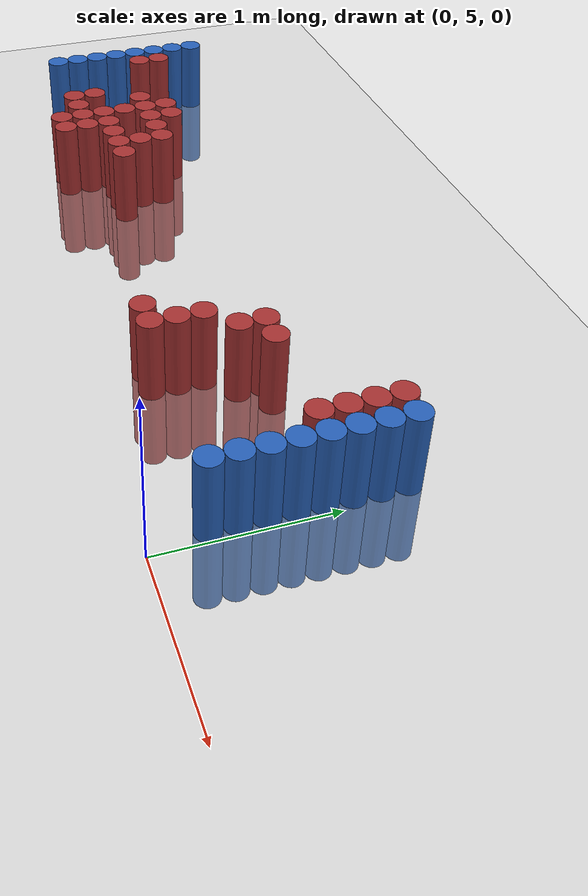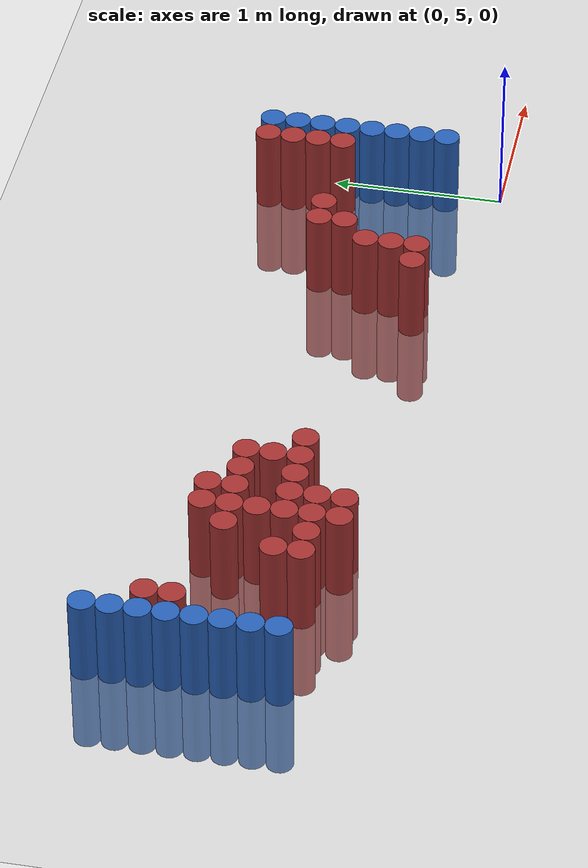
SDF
<sdf version="1.6">
 <world name="default">
  <model name="ground_plane">
   <static>1</static>
   <link name="link">
    <collision name="collision">
     <geometry><plane><normal>0 0 1</normal><size>100 100</size></plane></geometry>
     <surface><friction><ode><mu>100</mu><mu2>50</mu2></ode></friction></surface>
    </collision>
    <visual name="visual">
     <cast_shadows>0</cast_shadows>
     <geometry><plane><normal>0 0 1</normal><size>100 100</size></plane></geometry>
     <material>
      <script><uri>file://media/materials/scripts/gazebo.material</uri><name>Gazebo/Grey</name></script>
     </material>
    </visual>
   </link>
  </model>
  <model name="unit_cylinder_98">
   <static>1</static>
   <pose>-4.425000 5.475000 0.000000 0.000000 0.000000 0.000000</pose>
   <link name="link">
    <inertial>
     <mass>1</mass>
     <inertia><ixx>0.145833</ixx><ixy>0</ixy><ixz>0</ixz><iyy>0.145833</iyy><iyz>0</iyz><izz>0.125</izz></inertia>
    </inertial>
    <collision name="collision">
     <geometry><cylinder><radius>0.075000</radius><length>1</length></cylinder></geometry>
    </collision>
    <visual name="visual">
     <geometry><cylinder><radius>0.075000</radius><length>1</length></cylinder></geometry>
     <material>
      <ambient>0.152000 0.379000 0.720000 1</ambient>
      <diffuse>0.152000 0.379000 0.720000 1</diffuse>
     </material>
     <material>
      <script><name>Gazebo/Grey</name><uri>file://media/materials/scripts/gazebo.material</uri></script>
     </material>
    </visual>
   </link>
  </model>
  <model name="unit_cylinder_99">
   <static>1</static>
   <pose>-4.425000 5.625000 0.000000 0.000000 0.000000 0.000000</pose>
   <link name="link">
    <inertial>
     <mass>1</mass>
     <inertia><ixx>0.145833</ixx><ixy>0</ixy><ixz>0</ixz><iyy>0.145833</iyy><iyz>0</iyz><izz>0.125</izz></inertia>
    </inertial>
    <collision name="collision">
     <geometry><cylinder><radius>0.075000</radius><length>1</length></cylinder></geometry>
    </collision>
    <visual name="visual">
     <geometry><cylinder><radius>0.075000</radius><length>1</length></cylinder></geometry>
     <material>
      <ambient>0.152000 0.379000 0.720000 1</ambient>
      <diffuse>0.152000 0.379000 0.720000 1</diffuse>
     </material>
     <material>
      <script><name>Gazebo/Grey</name><uri>file://media/materials/scripts/gazebo.material</uri></script>
     </material>
    </visual>
   </link>
  </model>
  <model name="unit_cylinder_100">
   <static>1</static>
   <pose>-4.425000 5.775000 0.000000 0.000000 0.000000 0.000000</pose>
   <link name="link">
    <inertial>
     <mass>1</mass>
     <inertia><ixx>0.145833</ixx><ixy>0</ixy><ixz>0</ixz><iyy>0.145833</iyy><iyz>0</iyz><izz>0.125</izz></inertia>
    </inertial>
    <collision name="collision">
     <geometry><cylinder><radius>0.075000</radius><length>1</length></cylinder></geometry>
    </collision>
    <visual name="visual">
     <geometry><cylinder><radius>0.075000</radius><length>1</length></cylinder></geometry>
     <material>
      <ambient>0.152000 0.379000 0.720000 1</ambient>
      <diffuse>0.152000 0.379000 0.720000 1</diffuse>
     </material>
     <material>
      <script><name>Gazebo/Grey</name><uri>file://media/materials/scripts/gazebo.material</uri></script>
     </material>
    </visual>
   </link>
  </model>
  <model name="unit_cylinder_101">
   <static>1</static>
   <pose>-4.425000 5.925000 0.000000 0.000000 0.000000 0.000000</pose>
   <link name="link">
    <inertial>
     <mass>1</mass>
     <inertia><ixx>0.145833</ixx><ixy>0</ixy><ixz>0</ixz><iyy>0.145833</iyy><iyz>0</iyz><izz>0.125</izz></inertia>
    </inertial>
    <collision name="collision">
     <geometry><cylinder><radius>0.075000</radius><length>1</length></cylinder></geometry>
    </collision>
    <visual name="visual">
     <geometry><cylinder><radius>0.075000</radius><length>1</length></cylinder></geometry>
     <material>
      <ambient>0.152000 0.379000 0.720000 1</ambient>
      <diffuse>0.152000 0.379000 0.720000 1</diffuse>
     </material>
     <material>
      <script><name>Gazebo/Grey</name><uri>file://media/materials/scripts/gazebo.material</uri></script>
     </material>
    </visual>
   </link>
  </model>
  <model name="unit_cylinder_102">
   <static>1</static>
   <pose>-4.425000 6.075000 0.000000 0.000000 0.000000 0.000000</pose>
   <link name="link">
    <inertial>
     <mass>1</mass>
     <inertia><ixx>0.145833</ixx><ixy>0</ixy><ixz>0</ixz><iyy>0.145833</iyy><iyz>0</iyz><izz>0.125</izz></inertia>
    </inertial>
    <collision name="collision">
     <geometry><cylinder><radius>0.075000</radius><length>1</length></cylinder></geometry>
    </collision>
    <visual name="visual">
     <geometry><cylinder><radius>0.075000</radius><length>1</length></cylinder></geometry>
     <material>
      <ambient>0.152000 0.379000 0.720000 1</ambient>
      <diffuse>0.152000 0.379000 0.720000 1</diffuse>
     </material>
     <material>
      <script><name>Gazebo/Grey</name><uri>file://media/materials/scripts/gazebo.material</uri></script>
     </material>
    </visual>
   </link>
  </model>
  <model name="unit_cylinder_103">
   <static>1</static>
   <pose>-4.425000 6.225000 0.000000 0.000000 0.000000 0.000000</pose>
   <link name="link">
    <inertial>
     <mass>1</mass>
     <inertia><ixx>0.145833</ixx><ixy>0</ixy><ixz>0</ixz><iyy>0.145833</iyy><iyz>0</iyz><izz>0.125</izz></inertia>
    </inertial>
    <collision name="collision">
     <geometry><cylinder><radius>0.075000</radius><length>1</length></cylinder></geometry>
    </collision>
    <visual name="visual">
     <geometry><cylinder><radius>0.075000</radius><length>1</length></cylinder></geometry>
     <material>
      <ambient>0.152000 0.379000 0.720000 1</ambient>
      <diffuse>0.152000 0.379000 0.720000 1</diffuse>
     </material>
     <material>
      <script><name>Gazebo/Grey</name><uri>file://media/materials/scripts/gazebo.material</uri></script>
     </material>
    </visual>
   </link>
  </model>
  <model name="unit_cylinder_104">
   <static>1</static>
   <pose>-4.425000 6.375000 0.000000 0.000000 0.000000 0.000000</pose>
   <link name="link">
    <inertial>
     <mass>1</mass>
     <inertia><ixx>0.145833</ixx><ixy>0</ixy><ixz>0</ixz><iyy>0.145833</iyy><iyz>0</iyz><izz>0.125</izz></inertia>
    </inertial>
    <collision name="collision">
     <geometry><cylinder><radius>0.075000</radius><length>1</length></cylinder></geometry>
    </collision>
    <visual name="visual">
     <geometry><cylinder><radius>0.075000</radius><length>1</length></cylinder></geometry>
     <material>
      <ambient>0.152000 0.379000 0.720000 1</ambient>
      <diffuse>0.152000 0.379000 0.720000 1</diffuse>
     </material>
     <material>
      <script><name>Gazebo/Grey</name><uri>file://media/materials/scripts/gazebo.material</uri></script>
     </material>
    </visual>
   </link>
  </model>
  <model name="unit_cylinder_105">
   <static>1</static>
   <pose>-4.425000 6.525000 0.000000 0.000000 0.000000 0.000000</pose>
   <link name="link">
    <inertial>
     <mass>1</mass>
     <inertia><ixx>0.145833</ixx><ixy>0</ixy><ixz>0</ixz><iyy>0.145833</iyy><iyz>0</iyz><izz>0.125</izz></inertia>
    </inertial>
    <collision name="collision">
     <geometry><cylinder><radius>0.075000</radius><length>1</length></cylinder></geometry>
    </collision>
    <visual name="visual">
     <geometry><cylinder><radius>0.075000</radius><length>1</length></cylinder></geometry>
     <material>
      <ambient>0.152000 0.379000 0.720000 1</ambient>
      <diffuse>0.152000 0.379000 0.720000 1</diffuse>
     </material>
     <material>
      <script><name>Gazebo/Grey</name><uri>file://media/materials/scripts/gazebo.material</uri></script>
     </material>
    </visual>
   </link>
  </model>
  <model name="unit_cylinder_126">
   <static>1</static>
   <pose>-4.275000 6.075000 0.000000 0.000000 0.000000 0.000000</pose>
   <link name="link">
    <inertial>
     <mass>1</mass>
     <inertia><ixx>0.145833</ixx><ixy>0</ixy><ixz>0</ixz><iyy>0.145833</iyy><iyz>0</iyz><izz>0.125</izz></inertia>
    </inertial>
    <collision name="collision">
     <geometry><cylinder><radius>0.075000</radius><length>1</length></cylinder></geometry>
    </collision>
    <visual name="visual">
     <geometry><cylinder><radius>0.075000</radius><length>1</length></cylinder></geometry>
     <material>
      <ambient>0.648000 0.192000 0.192000 1</ambient>
      <diffuse>0.648000 0.192000 0.192000 1</diffuse>
     </material>
     <material>
      <script><name>Gazebo/Grey</name><uri>file://media/materials/scripts/gazebo.material</uri></script>
     </material>
    </visual>
   </link>
  </model>
  <model name="unit_cylinder_127">
   <static>1</static>
   <pose>-4.275000 6.225000 0.000000 0.000000 0.000000 0.000000</pose>
   <link name="link">
    <inertial>
     <mass>1</mass>
     <inertia><ixx>0.145833</ixx><ixy>0</ixy><ixz>0</ixz><iyy>0.145833</iyy><iyz>0</iyz><izz>0.125</izz></inertia>
    </inertial>
    <collision name="collision">
     <geometry><cylinder><radius>0.075000</radius><length>1</length></cylinder></geometry>
    </collision>
    <visual name="visual">
     <geometry><cylinder><radius>0.075000</radius><length>1</length></cylinder></geometry>
     <material>
      <ambient>0.648000 0.192000 0.192000 1</ambient>
      <diffuse>0.648000 0.192000 0.192000 1</diffuse>
     </material>
     <material>
      <script><name>Gazebo/Grey</name><uri>file://media/materials/scripts/gazebo.material</uri></script>
     </material>
    </visual>
   </link>
  </model>
  <model name="unit_cylinder_149">
   <static>1</static>
   <pose>-3.825000 5.475000 0.000000 0.000000 0.000000 0.000000</pose>
   <link name="link">
    <inertial>
     <mass>1</mass>
     <inertia><ixx>0.145833</ixx><ixy>0</ixy><ixz>0</ixz><iyy>0.145833</iyy><iyz>0</iyz><izz>0.125</izz></inertia>
    </inertial>
    <collision name="collision">
     <geometry><cylinder><radius>0.075000</radius><length>1</length></cylinder></geometry>
    </collision>
    <visual name="visual">
     <geometry><cylinder><radius>0.075000</radius><length>1</length></cylinder></geometry>
     <material>
      <ambient>0.648000 0.192000 0.192000 1</ambient>
      <diffuse>0.648000 0.192000 0.192000 1</diffuse>
     </material>
     <material>
      <script><name>Gazebo/Grey</name><uri>file://media/materials/scripts/gazebo.material</uri></script>
     </material>
    </visual>
   </link>
  </model>
  <model name="unit_cylinder_150">
   <static>1</static>
   <pose>-3.825000 5.625000 0.000000 0.000000 0.000000 0.000000</pose>
   <link name="link">
    <inertial>
     <mass>1</mass>
     <inertia><ixx>0.145833</ixx><ixy>0</ixy><ixz>0</ixz><iyy>0.145833</iyy><iyz>0</iyz><izz>0.125</izz></inertia>
    </inertial>
    <collision name="collision">
     <geometry><cylinder><radius>0.075000</radius><length>1</length></cylinder></geometry>
    </collision>
    <visual name="visual">
     <geometry><cylinder><radius>0.075000</radius><length>1</length></cylinder></geometry>
     <material>
      <ambient>0.648000 0.192000 0.192000 1</ambient>
      <diffuse>0.648000 0.192000 0.192000 1</diffuse>
     </material>
     <material>
      <script><name>Gazebo/Grey</name><uri>file://media/materials/scripts/gazebo.material</uri></script>
     </material>
    </visual>
   </link>
  </model>
  <model name="unit_cylinder_156">
   <static>1</static>
   <pose>-3.675000 5.475000 0.000000 0.000000 0.000000 0.000000</pose>
   <link name="link">
    <inertial>
     <mass>1</mass>
     <inertia><ixx>0.145833</ixx><ixy>0</ixy><ixz>0</ixz><iyy>0.145833</iyy><iyz>0</iyz><izz>0.125</izz></inertia>
    </inertial>
    <collision name="collision">
     <geometry><cylinder><radius>0.075000</radius><length>1</length></cylinder></geometry>
    </collision>
    <visual name="visual">
     <geometry><cylinder><radius>0.075000</radius><length>1</length></cylinder></geometry>
     <material>
      <ambient>0.648000 0.192000 0.192000 1</ambient>
      <diffuse>0.648000 0.192000 0.192000 1</diffuse>
     </material>
     <material>
      <script><name>Gazebo/Grey</name><uri>file://media/materials/scripts/gazebo.material</uri></script>
     </material>
    </visual>
   </link>
  </model>
  <model name="unit_cylinder_157">
   <static>1</static>
   <pose>-3.675000 5.925000 0.000000 0.000000 0.000000 0.000000</pose>
   <link name="link">
    <inertial>
     <mass>1</mass>
     <inertia><ixx>0.145833</ixx><ixy>0</ixy><ixz>0</ixz><iyy>0.145833</iyy><iyz>0</iyz><izz>0.125</izz></inertia>
    </inertial>
    <collision name="collision">
     <geometry><cylinder><radius>0.075000</radius><length>1</length></cylinder></geometry>
    </collision>
    <visual name="visual">
     <geometry><cylinder><radius>0.075000</radius><length>1</length></cylinder></geometry>
     <material>
      <ambient>0.648000 0.192000 0.192000 1</ambient>
      <diffuse>0.648000 0.192000 0.192000 1</diffuse>
     </material>
     <material>
      <script><name>Gazebo/Grey</name><uri>file://media/materials/scripts/gazebo.material</uri></script>
     </material>
    </visual>
   </link>
  </model>
  <model name="unit_cylinder_161">
   <static>1</static>
   <pose>-3.525000 5.325000 0.000000 0.000000 0.000000 0.000000</pose>
   <link name="link">
    <inertial>
     <mass>1</mass>
     <inertia><ixx>0.145833</ixx><ixy>0</ixy><ixz>0</ixz><iyy>0.145833</iyy><iyz>0</iyz><izz>0.125</izz></inertia>
    </inertial>
    <collision name="collision">
     <geometry><cylinder><radius>0.075000</radius><length>1</length></cylinder></geometry>
    </collision>
    <visual name="visual">
     <geometry><cylinder><radius>0.075000</radius><length>1</length></cylinder></geometry>
     <material>
      <ambient>0.648000 0.192000 0.192000 1</ambient>
      <diffuse>0.648000 0.192000 0.192000 1</diffuse>
     </material>
     <material>
      <script><name>Gazebo/Grey</name><uri>file://media/materials/scripts/gazebo.material</uri></script>
     </material>
    </visual>
   </link>
  </model>
  <model name="unit_cylinder_162">
   <static>1</static>
   <pose>-3.525000 5.475000 0.000000 0.000000 0.000000 0.000000</pose>
   <link name="link">
    <inertial>
     <mass>1</mass>
     <inertia><ixx>0.145833</ixx><ixy>0</ixy><ixz>0</ixz><iyy>0.145833</iyy><iyz>0</iyz><izz>0.125</izz></inertia>
    </inertial>
    <collision name="collision">
     <geometry><cylinder><radius>0.075000</radius><length>1</length></cylinder></geometry>
    </collision>
    <visual name="visual">
     <geometry><cylinder><radius>0.075000</radius><length>1</length></cylinder></geometry>
     <material>
      <ambient>0.648000 0.192000 0.192000 1</ambient>
      <diffuse>0.648000 0.192000 0.192000 1</diffuse>
     </material>
     <material>
      <script><name>Gazebo/Grey</name><uri>file://media/materials/scripts/gazebo.material</uri></script>
     </material>
    </visual>
   </link>
  </model>
  <model name="unit_cylinder_163">
   <static>1</static>
   <pose>-3.525000 5.625000 0.000000 0.000000 0.000000 0.000000</pose>
   <link name="link">
    <inertial>
     <mass>1</mass>
     <inertia><ixx>0.145833</ixx><ixy>0</ixy><ixz>0</ixz><iyy>0.145833</iyy><iyz>0</iyz><izz>0.125</izz></inertia>
    </inertial>
    <collision name="collision">
     <geometry><cylinder><radius>0.075000</radius><length>1</length></cylinder></geometry>
    </collision>
    <visual name="visual">
     <geometry><cylinder><radius>0.075000</radius><length>1</length></cylinder></geometry>
     <material>
      <ambient>0.648000 0.192000 0.192000 1</ambient>
      <diffuse>0.648000 0.192000 0.192000 1</diffuse>
     </material>
     <material>
      <script><name>Gazebo/Grey</name><uri>file://media/materials/scripts/gazebo.material</uri></script>
     </material>
    </visual>
   </link>
  </model>
  <model name="unit_cylinder_164">
   <static>1</static>
   <pose>-3.525000 5.775000 0.000000 0.000000 0.000000 0.000000</pose>
   <link name="link">
    <inertial>
     <mass>1</mass>
     <inertia><ixx>0.145833</ixx><ixy>0</ixy><ixz>0</ixz><iyy>0.145833</iyy><iyz>0</iyz><izz>0.125</izz></inertia>
    </inertial>
    <collision name="collision">
     <geometry><cylinder><radius>0.075000</radius><length>1</length></cylinder></geometry>
    </collision>
    <visual name="visual">
     <geometry><cylinder><radius>0.075000</radius><length>1</length></cylinder></geometry>
     <material>
      <ambient>0.648000 0.192000 0.192000 1</ambient>
      <diffuse>0.648000 0.192000 0.192000 1</diffuse>
     </material>
     <material>
      <script><name>Gazebo/Grey</name><uri>file://media/materials/scripts/gazebo.material</uri></script>
     </material>
    </visual>
   </link>
  </model>
  <model name="unit_cylinder_165">
   <static>1</static>
   <pose>-3.525000 5.925000 0.000000 0.000000 0.000000 0.000000</pose>
   <link name="link">
    <inertial>
     <mass>1</mass>
     <inertia><ixx>0.145833</ixx><ixy>0</ixy><ixz>0</ixz><iyy>0.145833</iyy><iyz>0</iyz><izz>0.125</izz></inertia>
    </inertial>
    <collision name="collision">
     <geometry><cylinder><radius>0.075000</radius><length>1</length></cylinder></geometry>
    </collision>
    <visual name="visual">
     <geometry><cylinder><radius>0.075000</radius><length>1</length></cylinder></geometry>
     <material>
      <ambient>0.648000 0.192000 0.192000 1</ambient>
      <diffuse>0.648000 0.192000 0.192000 1</diffuse>
     </material>
     <material>
      <script><name>Gazebo/Grey</name><uri>file://media/materials/scripts/gazebo.material</uri></script>
     </material>
    </visual>
   </link>
  </model>
  <model name="unit_cylinder_166">
   <static>1</static>
   <pose>-3.525000 6.075000 0.000000 0.000000 0.000000 0.000000</pose>
   <link name="link">
    <inertial>
     <mass>1</mass>
     <inertia><ixx>0.145833</ixx><ixy>0</ixy><ixz>0</ixz><iyy>0.145833</iyy><iyz>0</iyz><izz>0.125</izz></inertia>
    </inertial>
    <collision name="collision">
     <geometry><cylinder><radius>0.075000</radius><length>1</length></cylinder></geometry>
    </collision>
    <visual name="visual">
     <geometry><cylinder><radius>0.075000</radius><length>1</length></cylinder></geometry>
     <material>
      <ambient>0.648000 0.192000 0.192000 1</ambient>
      <diffuse>0.648000 0.192000 0.192000 1</diffuse>
     </material>
     <material>
      <script><name>Gazebo/Grey</name><uri>file://media/materials/scripts/gazebo.material</uri></script>
     </material>
    </visual>
   </link>
  </model>
  <model name="unit_cylinder_170">
   <static>1</static>
   <pose>-3.375000 5.325000 0.000000 0.000000 0.000000 0.000000</pose>
   <link name="link">
    <inertial>
     <mass>1</mass>
     <inertia><ixx>0.145833</ixx><ixy>0</ixy><ixz>0</ixz><iyy>0.145833</iyy><iyz>0</iyz><izz>0.125</izz></inertia>
    </inertial>
    <collision name="collision">
     <geometry><cylinder><radius>0.075000</radius><length>1</length></cylinder></geometry>
    </collision>
    <visual name="visual">
     <geometry><cylinder><radius>0.075000</radius><length>1</length></cylinder></geometry>
     <material>
      <ambient>0.648000 0.192000 0.192000 1</ambient>
      <diffuse>0.648000 0.192000 0.192000 1</diffuse>
     </material>
     <material>
      <script><name>Gazebo/Grey</name><uri>file://media/materials/scripts/gazebo.material</uri></script>
     </material>
    </visual>
   </link>
  </model>
  <model name="unit_cylinder_171">
   <static>1</static>
   <pose>-3.375000 5.475000 0.000000 0.000000 0.000000 0.000000</pose>
   <link name="link">
    <inertial>
     <mass>1</mass>
     <inertia><ixx>0.145833</ixx><ixy>0</ixy><ixz>0</ixz><iyy>0.145833</iyy><iyz>0</iyz><izz>0.125</izz></inertia>
    </inertial>
    <collision name="collision">
     <geometry><cylinder><radius>0.075000</radius><length>1</length></cylinder></geometry>
    </collision>
    <visual name="visual">
     <geometry><cylinder><radius>0.075000</radius><length>1</length></cylinder></geometry>
     <material>
      <ambient>0.648000 0.192000 0.192000 1</ambient>
      <diffuse>0.648000 0.192000 0.192000 1</diffuse>
     </material>
     <material>
      <script><name>Gazebo/Grey</name><uri>file://media/materials/scripts/gazebo.material</uri></script>
     </material>
    </visual>
   </link>
  </model>
  <model name="unit_cylinder_172">
   <static>1</static>
   <pose>-3.375000 5.625000 0.000000 0.000000 0.000000 0.000000</pose>
   <link name="link">
    <inertial>
     <mass>1</mass>
     <inertia><ixx>0.145833</ixx><ixy>0</ixy><ixz>0</ixz><iyy>0.145833</iyy><iyz>0</iyz><izz>0.125</izz></inertia>
    </inertial>
    <collision name="collision">
     <geometry><cylinder><radius>0.075000</radius><length>1</length></cylinder></geometry>
    </collision>
    <visual name="visual">
     <geometry><cylinder><radius>0.075000</radius><length>1</length></cylinder></geometry>
     <material>
      <ambient>0.648000 0.192000 0.192000 1</ambient>
      <diffuse>0.648000 0.192000 0.192000 1</diffuse>
     </material>
     <material>
      <script><name>Gazebo/Grey</name><uri>file://media/materials/scripts/gazebo.material</uri></script>
     </material>
    </visual>
   </link>
  </model>
  <model name="unit_cylinder_173">
   <static>1</static>
   <pose>-3.375000 5.925000 0.000000 0.000000 0.000000 0.000000</pose>
   <link name="link">
    <inertial>
     <mass>1</mass>
     <inertia><ixx>0.145833</ixx><ixy>0</ixy><ixz>0</ixz><iyy>0.145833</iyy><iyz>0</iyz><izz>0.125</izz></inertia>
    </inertial>
    <collision name="collision">
     <geometry><cylinder><radius>0.075000</radius><length>1</length></cylinder></geometry>
    </collision>
    <visual name="visual">
     <geometry><cylinder><radius>0.075000</radius><length>1</length></cylinder></geometry>
     <material>
      <ambient>0.648000 0.192000 0.192000 1</ambient>
      <diffuse>0.648000 0.192000 0.192000 1</diffuse>
     </material>
     <material>
      <script><name>Gazebo/Grey</name><uri>file://media/materials/scripts/gazebo.material</uri></script>
     </material>
    </visual>
   </link>
  </model>
  <model name="unit_cylinder_174">
   <static>1</static>
   <pose>-3.375000 6.075000 0.000000 0.000000 0.000000 0.000000</pose>
   <link name="link">
    <inertial>
     <mass>1</mass>
     <inertia><ixx>0.145833</ixx><ixy>0</ixy><ixz>0</ixz><iyy>0.145833</iyy><iyz>0</iyz><izz>0.125</izz></inertia>
    </inertial>
    <collision name="collision">
     <geometry><cylinder><radius>0.075000</radius><length>1</length></cylinder></geometry>
    </collision>
    <visual name="visual">
     <geometry><cylinder><radius>0.075000</radius><length>1</length></cylinder></geometry>
     <material>
      <ambient>0.648000 0.192000 0.192000 1</ambient>
      <diffuse>0.648000 0.192000 0.192000 1</diffuse>
     </material>
     <material>
      <script><name>Gazebo/Grey</name><uri>file://media/materials/scripts/gazebo.material</uri></script>
     </material>
    </visual>
   </link>
  </model>
  <model name="unit_cylinder_178">
   <static>1</static>
   <pose>-3.225000 5.625000 0.000000 0.000000 0.000000 0.000000</pose>
   <link name="link">
    <inertial>
     <mass>1</mass>
     <inertia><ixx>0.145833</ixx><ixy>0</ixy><ixz>0</ixz><iyy>0.145833</iyy><iyz>0</iyz><izz>0.125</izz></inertia>
    </inertial>
    <collision name="collision">
     <geometry><cylinder><radius>0.075000</radius><length>1</length></cylinder></geometry>
    </collision>
    <visual name="visual">
     <geometry><cylinder><radius>0.075000</radius><length>1</length></cylinder></geometry>
     <material>
      <ambient>0.648000 0.192000 0.192000 1</ambient>
      <diffuse>0.648000 0.192000 0.192000 1</diffuse>
     </material>
     <material>
      <script><name>Gazebo/Grey</name><uri>file://media/materials/scripts/gazebo.material</uri></script>
     </material>
    </visual>
   </link>
  </model>
  <model name="unit_cylinder_179">
   <static>1</static>
   <pose>-3.225000 5.925000 0.000000 0.000000 0.000000 0.000000</pose>
   <link name="link">
    <inertial>
     <mass>1</mass>
     <inertia><ixx>0.145833</ixx><ixy>0</ixy><ixz>0</ixz><iyy>0.145833</iyy><iyz>0</iyz><izz>0.125</izz></inertia>
    </inertial>
    <collision name="collision">
     <geometry><cylinder><radius>0.075000</radius><length>1</length></cylinder></geometry>
    </collision>
    <visual name="visual">
     <geometry><cylinder><radius>0.075000</radius><length>1</length></cylinder></geometry>
     <material>
      <ambient>0.648000 0.192000 0.192000 1</ambient>
      <diffuse>0.648000 0.192000 0.192000 1</diffuse>
     </material>
     <material>
      <script><name>Gazebo/Grey</name><uri>file://media/materials/scripts/gazebo.material</uri></script>
     </material>
    </visual>
   </link>
  </model>
  <model name="unit_cylinder_186">
   <static>1</static>
   <pose>-3.075000 5.625000 0.000000 0.000000 0.000000 0.000000</pose>
   <link name="link">
    <inertial>
     <mass>1</mass>
     <inertia><ixx>0.145833</ixx><ixy>0</ixy><ixz>0</ixz><iyy>0.145833</iyy><iyz>0</iyz><izz>0.125</izz></inertia>
    </inertial>
    <collision name="collision">
     <geometry><cylinder><radius>0.075000</radius><length>1</length></cylinder></geometry>
    </collision>
    <visual name="visual">
     <geometry><cylinder><radius>0.075000</radius><length>1</length></cylinder></geometry>
     <material>
      <ambient>0.648000 0.192000 0.192000 1</ambient>
      <diffuse>0.648000 0.192000 0.192000 1</diffuse>
     </material>
     <material>
      <script><name>Gazebo/Grey</name><uri>file://media/materials/scripts/gazebo.material</uri></script>
     </material>
    </visual>
   </link>
  </model>
  <model name="unit_cylinder_187">
   <static>1</static>
   <pose>-3.075000 5.775000 0.000000 0.000000 0.000000 0.000000</pose>
   <link name="link">
    <inertial>
     <mass>1</mass>
     <inertia><ixx>0.145833</ixx><ixy>0</ixy><ixz>0</ixz><iyy>0.145833</iyy><iyz>0</iyz><izz>0.125</izz></inertia>
    </inertial>
    <collision name="collision">
     <geometry><cylinder><radius>0.075000</radius><length>1</length></cylinder></geometry>
    </collision>
    <visual name="visual">
     <geometry><cylinder><radius>0.075000</radius><length>1</length></cylinder></geometry>
     <material>
      <ambient>0.648000 0.192000 0.192000 1</ambient>
      <diffuse>0.648000 0.192000 0.192000 1</diffuse>
     </material>
     <material>
      <script><name>Gazebo/Grey</name><uri>file://media/materials/scripts/gazebo.material</uri></script>
     </material>
    </visual>
   </link>
  </model>
  <model name="unit_cylinder_188">
   <static>1</static>
   <pose>-3.075000 5.925000 0.000000 0.000000 0.000000 0.000000</pose>
   <link name="link">
    <inertial>
     <mass>1</mass>
     <inertia><ixx>0.145833</ixx><ixy>0</ixy><ixz>0</ixz><iyy>0.145833</iyy><iyz>0</iyz><izz>0.125</izz></inertia>
    </inertial>
    <collision name="collision">
     <geometry><cylinder><radius>0.075000</radius><length>1</length></cylinder></geometry>
    </collision>
    <visual name="visual">
     <geometry><cylinder><radius>0.075000</radius><length>1</length></cylinder></geometry>
     <material>
      <ambient>0.648000 0.192000 0.192000 1</ambient>
      <diffuse>0.648000 0.192000 0.192000 1</diffuse>
     </material>
     <material>
      <script><name>Gazebo/Grey</name><uri>file://media/materials/scripts/gazebo.material</uri></script>
     </material>
    </visual>
   </link>
  </model>
  <model name="unit_cylinder_194">
   <static>1</static>
   <pose>-2.925000 5.625000 0.000000 0.000000 0.000000 0.000000</pose>
   <link name="link">
    <inertial>
     <mass>1</mass>
     <inertia><ixx>0.145833</ixx><ixy>0</ixy><ixz>0</ixz><iyy>0.145833</iyy><iyz>0</iyz><izz>0.125</izz></inertia>
    </inertial>
    <collision name="collision">
     <geometry><cylinder><radius>0.075000</radius><length>1</length></cylinder></geometry>
    </collision>
    <visual name="visual">
     <geometry><cylinder><radius>0.075000</radius><length>1</length></cylinder></geometry>
     <material>
      <ambient>0.648000 0.192000 0.192000 1</ambient>
      <diffuse>0.648000 0.192000 0.192000 1</diffuse>
     </material>
     <material>
      <script><name>Gazebo/Grey</name><uri>file://media/materials/scripts/gazebo.material</uri></script>
     </material>
    </visual>
   </link>
  </model>
  <model name="unit_cylinder_224">
   <static>1</static>
   <pose>-1.275000 5.325000 0.000000 0.000000 0.000000 0.000000</pose>
   <link name="link">
    <inertial>
     <mass>1</mass>
     <inertia><ixx>0.145833</ixx><ixy>0</ixy><ixz>0</ixz><iyy>0.145833</iyy><iyz>0</iyz><izz>0.125</izz></inertia>
    </inertial>
    <collision name="collision">
     <geometry><cylinder><radius>0.075000</radius><length>1</length></cylinder></geometry>
    </collision>
    <visual name="visual">
     <geometry><cylinder><radius>0.075000</radius><length>1</length></cylinder></geometry>
     <material>
      <ambient>0.648000 0.192000 0.192000 1</ambient>
      <diffuse>0.648000 0.192000 0.192000 1</diffuse>
     </material>
     <material>
      <script><name>Gazebo/Grey</name><uri>file://media/materials/scripts/gazebo.material</uri></script>
     </material>
    </visual>
   </link>
  </model>
  <model name="unit_cylinder_230">
   <static>1</static>
   <pose>-1.125000 5.325000 0.000000 0.000000 0.000000 0.000000</pose>
   <link name="link">
    <inertial>
     <mass>1</mass>
     <inertia><ixx>0.145833</ixx><ixy>0</ixy><ixz>0</ixz><iyy>0.145833</iyy><iyz>0</iyz><izz>0.125</izz></inertia>
    </inertial>
    <collision name="collision">
     <geometry><cylinder><radius>0.075000</radius><length>1</length></cylinder></geometry>
    </collision>
    <visual name="visual">
     <geometry><cylinder><radius>0.075000</radius><length>1</length></cylinder></geometry>
     <material>
      <ambient>0.648000 0.192000 0.192000 1</ambient>
      <diffuse>0.648000 0.192000 0.192000 1</diffuse>
     </material>
     <material>
      <script><name>Gazebo/Grey</name><uri>file://media/materials/scripts/gazebo.material</uri></script>
     </material>
    </visual>
   </link>
  </model>
  <model name="unit_cylinder_231">
   <static>1</static>
   <pose>-1.125000 5.475000 0.000000 0.000000 0.000000 0.000000</pose>
   <link name="link">
    <inertial>
     <mass>1</mass>
     <inertia><ixx>0.145833</ixx><ixy>0</ixy><ixz>0</ixz><iyy>0.145833</iyy><iyz>0</iyz><izz>0.125</izz></inertia>
    </inertial>
    <collision name="collision">
     <geometry><cylinder><radius>0.075000</radius><length>1</length></cylinder></geometry>
    </collision>
    <visual name="visual">
     <geometry><cylinder><radius>0.075000</radius><length>1</length></cylinder></geometry>
     <material>
      <ambient>0.648000 0.192000 0.192000 1</ambient>
      <diffuse>0.648000 0.192000 0.192000 1</diffuse>
     </material>
     <material>
      <script><name>Gazebo/Grey</name><uri>file://media/materials/scripts/gazebo.material</uri></script>
     </material>
    </visual>
   </link>
  </model>
  <model name="unit_cylinder_232">
   <static>1</static>
   <pose>-1.125000 5.625000 0.000000 0.000000 0.000000 0.000000</pose>
   <link name="link">
    <inertial>
     <mass>1</mass>
     <inertia><ixx>0.145833</ixx><ixy>0</ixy><ixz>0</ixz><iyy>0.145833</iyy><iyz>0</iyz><izz>0.125</izz></inertia>
    </inertial>
    <collision name="collision">
     <geometry><cylinder><radius>0.075000</radius><length>1</length></cylinder></geometry>
    </collision>
    <visual name="visual">
     <geometry><cylinder><radius>0.075000</radius><length>1</length></cylinder></geometry>
     <material>
      <ambient>0.648000 0.192000 0.192000 1</ambient>
      <diffuse>0.648000 0.192000 0.192000 1</diffuse>
     </material>
     <material>
      <script><name>Gazebo/Grey</name><uri>file://media/materials/scripts/gazebo.material</uri></script>
     </material>
    </visual>
   </link>
  </model>
  <model name="unit_cylinder_237">
   <static>1</static>
   <pose>-0.975000 5.775000 0.000000 0.000000 0.000000 0.000000</pose>
   <link name="link">
    <inertial>
     <mass>1</mass>
     <inertia><ixx>0.145833</ixx><ixy>0</ixy><ixz>0</ixz><iyy>0.145833</iyy><iyz>0</iyz><izz>0.125</izz></inertia>
    </inertial>
    <collision name="collision">
     <geometry><cylinder><radius>0.075000</radius><length>1</length></cylinder></geometry>
    </collision>
    <visual name="visual">
     <geometry><cylinder><radius>0.075000</radius><length>1</length></cylinder></geometry>
     <material>
      <ambient>0.648000 0.192000 0.192000 1</ambient>
      <diffuse>0.648000 0.192000 0.192000 1</diffuse>
     </material>
     <material>
      <script><name>Gazebo/Grey</name><uri>file://media/materials/scripts/gazebo.material</uri></script>
     </material>
    </visual>
   </link>
  </model>
  <model name="unit_cylinder_238">
   <static>1</static>
   <pose>-0.975000 5.925000 0.000000 0.000000 0.000000 0.000000</pose>
   <link name="link">
    <inertial>
     <mass>1</mass>
     <inertia><ixx>0.145833</ixx><ixy>0</ixy><ixz>0</ixz><iyy>0.145833</iyy><iyz>0</iyz><izz>0.125</izz></inertia>
    </inertial>
    <collision name="collision">
     <geometry><cylinder><radius>0.075000</radius><length>1</length></cylinder></geometry>
    </collision>
    <visual name="visual">
     <geometry><cylinder><radius>0.075000</radius><length>1</length></cylinder></geometry>
     <material>
      <ambient>0.648000 0.192000 0.192000 1</ambient>
      <diffuse>0.648000 0.192000 0.192000 1</diffuse>
     </material>
     <material>
      <script><name>Gazebo/Grey</name><uri>file://media/materials/scripts/gazebo.material</uri></script>
     </material>
    </visual>
   </link>
  </model>
  <model name="unit_cylinder_242">
   <static>1</static>
   <pose>-0.825000 5.925000 0.000000 0.000000 0.000000 0.000000</pose>
   <link name="link">
    <inertial>
     <mass>1</mass>
     <inertia><ixx>0.145833</ixx><ixy>0</ixy><ixz>0</ixz><iyy>0.145833</iyy><iyz>0</iyz><izz>0.125</izz></inertia>
    </inertial>
    <collision name="collision">
     <geometry><cylinder><radius>0.075000</radius><length>1</length></cylinder></geometry>
    </collision>
    <visual name="visual">
     <geometry><cylinder><radius>0.075000</radius><length>1</length></cylinder></geometry>
     <material>
      <ambient>0.648000 0.192000 0.192000 1</ambient>
      <diffuse>0.648000 0.192000 0.192000 1</diffuse>
     </material>
     <material>
      <script><name>Gazebo/Grey</name><uri>file://media/materials/scripts/gazebo.material</uri></script>
     </material>
    </visual>
   </link>
  </model>
  <model name="unit_cylinder_253">
   <static>1</static>
   <pose>-0.225000 5.925000 0.000000 0.000000 0.000000 0.000000</pose>
   <link name="link">
    <inertial>
     <mass>1</mass>
     <inertia><ixx>0.145833</ixx><ixy>0</ixy><ixz>0</ixz><iyy>0.145833</iyy><iyz>0</iyz><izz>0.125</izz></inertia>
    </inertial>
    <collision name="collision">
     <geometry><cylinder><radius>0.075000</radius><length>1</length></cylinder></geometry>
    </collision>
    <visual name="visual">
     <geometry><cylinder><radius>0.075000</radius><length>1</length></cylinder></geometry>
     <material>
      <ambient>0.648000 0.192000 0.192000 1</ambient>
      <diffuse>0.648000 0.192000 0.192000 1</diffuse>
     </material>
     <material>
      <script><name>Gazebo/Grey</name><uri>file://media/materials/scripts/gazebo.material</uri></script>
     </material>
    </visual>
   </link>
  </model>
  <model name="unit_cylinder_254">
   <static>1</static>
   <pose>-0.225000 6.075000 0.000000 0.000000 0.000000 0.000000</pose>
   <link name="link">
    <inertial>
     <mass>1</mass>
     <inertia><ixx>0.145833</ixx><ixy>0</ixy><ixz>0</ixz><iyy>0.145833</iyy><iyz>0</iyz><izz>0.125</izz></inertia>
    </inertial>
    <collision name="collision">
     <geometry><cylinder><radius>0.075000</radius><length>1</length></cylinder></geometry>
    </collision>
    <visual name="visual">
     <geometry><cylinder><radius>0.075000</radius><length>1</length></cylinder></geometry>
     <material>
      <ambient>0.648000 0.192000 0.192000 1</ambient>
      <diffuse>0.648000 0.192000 0.192000 1</diffuse>
     </material>
     <material>
      <script><name>Gazebo/Grey</name><uri>file://media/materials/scripts/gazebo.material</uri></script>
     </material>
    </visual>
   </link>
  </model>
  <model name="unit_cylinder_255">
   <static>1</static>
   <pose>-0.225000 6.225000 0.000000 0.000000 0.000000 0.000000</pose>
   <link name="link">
    <inertial>
     <mass>1</mass>
     <inertia><ixx>0.145833</ixx><ixy>0</ixy><ixz>0</ixz><iyy>0.145833</iyy><iyz>0</iyz><izz>0.125</izz></inertia>
    </inertial>
    <collision name="collision">
     <geometry><cylinder><radius>0.075000</radius><length>1</length></cylinder></geometry>
    </collision>
    <visual name="visual">
     <geometry><cylinder><radius>0.075000</radius><length>1</length></cylinder></geometry>
     <material>
      <ambient>0.648000 0.192000 0.192000 1</ambient>
      <diffuse>0.648000 0.192000 0.192000 1</diffuse>
     </material>
     <material>
      <script><name>Gazebo/Grey</name><uri>file://media/materials/scripts/gazebo.material</uri></script>
     </material>
    </visual>
   </link>
  </model>
  <model name="unit_cylinder_256">
   <static>1</static>
   <pose>-0.225000 6.375000 0.000000 0.000000 0.000000 0.000000</pose>
   <link name="link">
    <inertial>
     <mass>1</mass>
     <inertia><ixx>0.145833</ixx><ixy>0</ixy><ixz>0</ixz><iyy>0.145833</iyy><iyz>0</iyz><izz>0.125</izz></inertia>
    </inertial>
    <collision name="collision">
     <geometry><cylinder><radius>0.075000</radius><length>1</length></cylinder></geometry>
    </collision>
    <visual name="visual">
     <geometry><cylinder><radius>0.075000</radius><length>1</length></cylinder></geometry>
     <material>
      <ambient>0.648000 0.192000 0.192000 1</ambient>
      <diffuse>0.648000 0.192000 0.192000 1</diffuse>
     </material>
     <material>
      <script><name>Gazebo/Grey</name><uri>file://media/materials/scripts/gazebo.material</uri></script>
     </material>
    </visual>
   </link>
  </model>
  <model name="unit_cylinder_271">
   <static>1</static>
   <pose>-0.075000 5.325000 0.000000 0.000000 0.000000 0.000000</pose>
   <link name="link">
    <inertial>
     <mass>1</mass>
     <inertia><ixx>0.145833</ixx><ixy>0</ixy><ixz>0</ixz><iyy>0.145833</iyy><iyz>0</iyz><izz>0.125</izz></inertia>
    </inertial>
    <collision name="collision">
     <geometry><cylinder><radius>0.075000</radius><length>1</length></cylinder></geometry>
    </collision>
    <visual name="visual">
     <geometry><cylinder><radius>0.075000</radius><length>1</length></cylinder></geometry>
     <material>
      <ambient>0.152000 0.379000 0.720000 1</ambient>
      <diffuse>0.152000 0.379000 0.720000 1</diffuse>
     </material>
     <material>
      <script><name>Gazebo/Grey</name><uri>file://media/materials/scripts/gazebo.material</uri></script>
     </material>
    </visual>
   </link>
  </model>
  <model name="unit_cylinder_272">
   <static>1</static>
   <pose>-0.075000 5.475000 0.000000 0.000000 0.000000 0.000000</pose>
   <link name="link">
    <inertial>
     <mass>1</mass>
     <inertia><ixx>0.145833</ixx><ixy>0</ixy><ixz>0</ixz><iyy>0.145833</iyy><iyz>0</iyz><izz>0.125</izz></inertia>
    </inertial>
    <collision name="collision">
     <geometry><cylinder><radius>0.075000</radius><length>1</length></cylinder></geometry>
    </collision>
    <visual name="visual">
     <geometry><cylinder><radius>0.075000</radius><length>1</length></cylinder></geometry>
     <material>
      <ambient>0.152000 0.379000 0.720000 1</ambient>
      <diffuse>0.152000 0.379000 0.720000 1</diffuse>
     </material>
     <material>
      <script><name>Gazebo/Grey</name><uri>file://media/materials/scripts/gazebo.material</uri></script>
     </material>
    </visual>
   </link>
  </model>
  <model name="unit_cylinder_273">
   <static>1</static>
   <pose>-0.075000 5.625000 0.000000 0.000000 0.000000 0.000000</pose>
   <link name="link">
    <inertial>
     <mass>1</mass>
     <inertia><ixx>0.145833</ixx><ixy>0</ixy><ixz>0</ixz><iyy>0.145833</iyy><iyz>0</iyz><izz>0.125</izz></inertia>
    </inertial>
    <collision name="collision">
     <geometry><cylinder><radius>0.075000</radius><length>1</length></cylinder></geometry>
    </collision>
    <visual name="visual">
     <geometry><cylinder><radius>0.075000</radius><length>1</length></cylinder></geometry>
     <material>
      <ambient>0.152000 0.379000 0.720000 1</ambient>
      <diffuse>0.152000 0.379000 0.720000 1</diffuse>
     </material>
     <material>
      <script><name>Gazebo/Grey</name><uri>file://media/materials/scripts/gazebo.material</uri></script>
     </material>
    </visual>
   </link>
  </model>
  <model name="unit_cylinder_274">
   <static>1</static>
   <pose>-0.075000 5.775000 0.000000 0.000000 0.000000 0.000000</pose>
   <link name="link">
    <inertial>
     <mass>1</mass>
     <inertia><ixx>0.145833</ixx><ixy>0</ixy><ixz>0</ixz><iyy>0.145833</iyy><iyz>0</iyz><izz>0.125</izz></inertia>
    </inertial>
    <collision name="collision">
     <geometry><cylinder><radius>0.075000</radius><length>1</length></cylinder></geometry>
    </collision>
    <visual name="visual">
     <geometry><cylinder><radius>0.075000</radius><length>1</length></cylinder></geometry>
     <material>
      <ambient>0.152000 0.379000 0.720000 1</ambient>
      <diffuse>0.152000 0.379000 0.720000 1</diffuse>
     </material>
     <material>
      <script><name>Gazebo/Grey</name><uri>file://media/materials/scripts/gazebo.material</uri></script>
     </material>
    </visual>
   </link>
  </model>
  <model name="unit_cylinder_275">
   <static>1</static>
   <pose>-0.075000 5.925000 0.000000 0.000000 0.000000 0.000000</pose>
   <link name="link">
    <inertial>
     <mass>1</mass>
     <inertia><ixx>0.145833</ixx><ixy>0</ixy><ixz>0</ixz><iyy>0.145833</iyy><iyz>0</iyz><izz>0.125</izz></inertia>
    </inertial>
    <collision name="collision">
     <geometry><cylinder><radius>0.075000</radius><length>1</length></cylinder></geometry>
    </collision>
    <visual name="visual">
     <geometry><cylinder><radius>0.075000</radius><length>1</length></cylinder></geometry>
     <material>
      <ambient>0.152000 0.379000 0.720000 1</ambient>
      <diffuse>0.152000 0.379000 0.720000 1</diffuse>
     </material>
     <material>
      <script><name>Gazebo/Grey</name><uri>file://media/materials/scripts/gazebo.material</uri></script>
     </material>
    </visual>
   </link>
  </model>
  <model name="unit_cylinder_276">
   <static>1</static>
   <pose>-0.075000 6.075000 0.000000 0.000000 0.000000 0.000000</pose>
   <link name="link">
    <inertial>
     <mass>1</mass>
     <inertia><ixx>0.145833</ixx><ixy>0</ixy><ixz>0</ixz><iyy>0.145833</iyy><iyz>0</iyz><izz>0.125</izz></inertia>
    </inertial>
    <collision name="collision">
     <geometry><cylinder><radius>0.075000</radius><length>1</length></cylinder></geometry>
    </collision>
    <visual name="visual">
     <geometry><cylinder><radius>0.075000</radius><length>1</length></cylinder></geometry>
     <material>
      <ambient>0.152000 0.379000 0.720000 1</ambient>
      <diffuse>0.152000 0.379000 0.720000 1</diffuse>
     </material>
     <material>
      <script><name>Gazebo/Grey</name><uri>file://media/materials/scripts/gazebo.material</uri></script>
     </material>
    </visual>
   </link>
  </model>
  <model name="unit_cylinder_277">
   <static>1</static>
   <pose>-0.075000 6.225000 0.000000 0.000000 0.000000 0.000000</pose>
   <link name="link">
    <inertial>
     <mass>1</mass>
     <inertia><ixx>0.145833</ixx><ixy>0</ixy><ixz>0</ixz><iyy>0.145833</iyy><iyz>0</iyz><izz>0.125</izz></inertia>
    </inertial>
    <collision name="collision">
     <geometry><cylinder><radius>0.075000</radius><length>1</length></cylinder></geometry>
    </collision>
    <visual name="visual">
     <geometry><cylinder><radius>0.075000</radius><length>1</length></cylinder></geometry>
     <material>
      <ambient>0.152000 0.379000 0.720000 1</ambient>
      <diffuse>0.152000 0.379000 0.720000 1</diffuse>
     </material>
     <material>
      <script><name>Gazebo/Grey</name><uri>file://media/materials/scripts/gazebo.material</uri></script>
     </material>
    </visual>
   </link>
  </model>
  <model name="unit_cylinder_278">
   <static>1</static>
   <pose>-0.075000 6.375000 0.000000 0.000000 0.000000 0.000000</pose>
   <link name="link">
    <inertial>
     <mass>1</mass>
     <inertia><ixx>0.145833</ixx><ixy>0</ixy><ixz>0</ixz><iyy>0.145833</iyy><iyz>0</iyz><izz>0.125</izz></inertia>
    </inertial>
    <collision name="collision">
     <geometry><cylinder><radius>0.075000</radius><length>1</length></cylinder></geometry>
    </collision>
    <visual name="visual">
     <geometry><cylinder><radius>0.075000</radius><length>1</length></cylinder></geometry>
     <material>
      <ambient>0.152000 0.379000 0.720000 1</ambient>
      <diffuse>0.152000 0.379000 0.720000 1</diffuse>
     </material>
     <material>
      <script><name>Gazebo/Grey</name><uri>file://media/materials/scripts/gazebo.material</uri></script>
     </material>
    </visual>
   </link>
  </model>
 </world>
</sdf>
